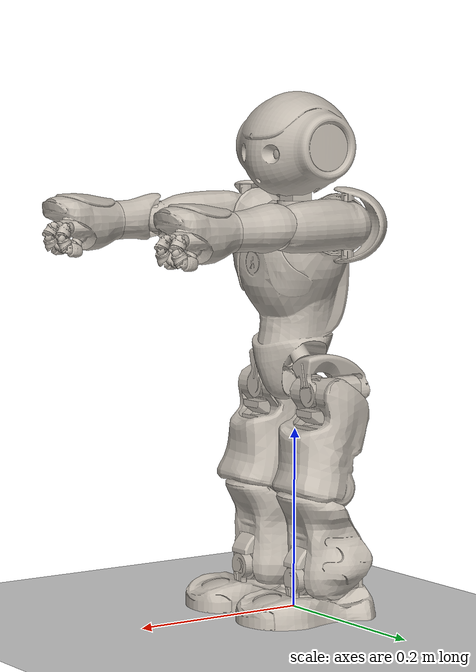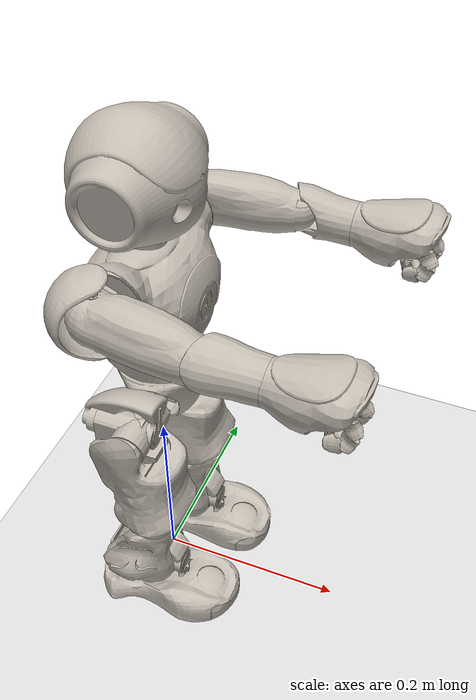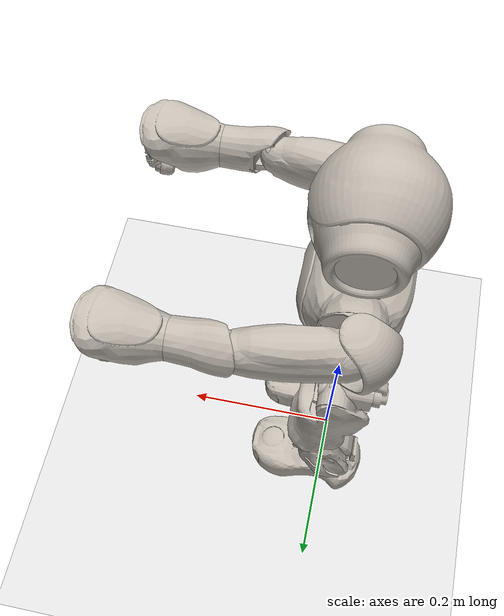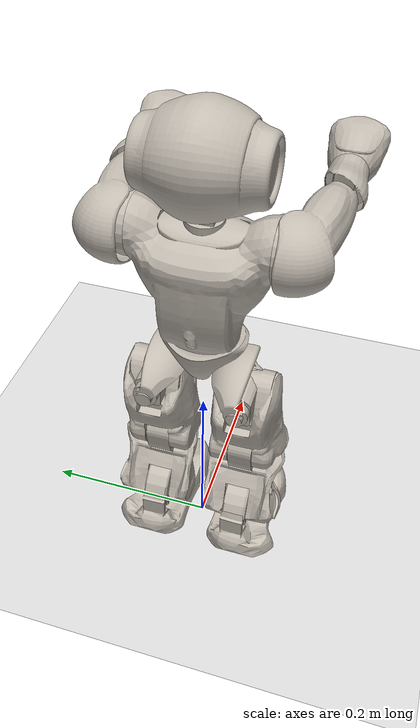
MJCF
<mujoco model="NaoH25V50">
  <compiler angle="radian" meshdir="meshes/V40_obj/"/>

  <statistic center="0 0 0.35" extent="0.9"/>
  <visual>
    <headlight diffuse="0.6 0.6 0.6" ambient="0.1 0.1 0.1" specular="0.9 0.9 0.9"/>
    <rgba haze="0.15 0.25 0.35 1"/>
    <global azimuth="-140" elevation="-20" offwidth="2080" offheight="1170"/>
  </visual>
  <default>
    <geom material="nao_body"/>
  </default>

  <asset>
    <texture type="skybox" builtin="gradient" rgb1=".95 .97 1" rgb2=".55 .68 .85" width="800" height="800"/>
    <texture type="2d" name="groundplane" builtin="checker" mark="edge" rgb1=".92 .92 .92" rgb2=".78 .78 .78" markrgb=".15 .15 .15"
      width="300" height="300"/>
    <material name="groundplane" texture="groundplane" texuniform="true" texrepeat="5 5" reflectance="0"/>
    <texture type="2d" name="nao_texture" file="texture/textureNAO_mujoco.png"/>
    <material name="nao_body" texture="nao_texture" rgba="1 1 1 1" specular="0.12" shininess="0.12"/>
    <mesh name="HeadYaw_0_10" file="HeadYaw.obj" scale="0.1 0.1 0.1"/>
    <mesh name="HeadPitch_0_10" file="HeadPitch.obj" scale="0.1 0.1 0.1"/>
    <mesh name="LHipYawPitch_0_10" file="LHipYawPitch.obj" scale="0.1 0.1 0.1"/>
    <mesh name="LHipRoll_0_10" file="LHipRoll.obj" scale="0.1 0.1 0.1"/>
    <mesh name="LHipPitch_0_10" file="LHipPitch.obj" scale="0.1 0.1 0.1"/>
    <mesh name="LKneePitch_0_10" file="LKneePitch.obj" scale="0.1 0.1 0.1"/>
    <mesh name="LAnklePitch_0_10" file="LAnklePitch.obj" scale="0.1 0.1 0.1"/>
    <mesh name="LAnkleRoll_0_10" file="LAnkleRoll.obj" scale="0.1 0.1 0.1"/>
    <mesh name="RHipYawPitch_0_10" file="RHipYawPitch.obj" scale="0.1 0.1 0.1"/>
    <mesh name="RHipRoll_0_10" file="RHipRoll.obj" scale="0.1 0.1 0.1"/>
    <mesh name="RHipPitch_0_10" file="RHipPitch.obj" scale="0.1 0.1 0.1"/>
    <mesh name="RKneePitch_0_10" file="RKneePitch.obj" scale="0.1 0.1 0.1"/>
    <mesh name="RAnklePitch_0_10" file="RAnklePitch.obj" scale="0.1 0.1 0.1"/>
    <mesh name="RAnkleRoll_0_10" file="RAnkleRoll.obj" scale="0.1 0.1 0.1"/>
    <mesh name="Torso_0_10" file="Torso.obj" scale="0.1 0.1 0.1"/>
    <mesh name="LShoulderPitch_0_10" file="LShoulderPitch.obj" scale="0.1 0.1 0.1"/>
    <mesh name="LShoulderRoll_0_10" file="LShoulderRoll.obj" scale="0.1 0.1 0.1"/>
    <mesh name="LElbowRoll_0_10" file="LElbowRoll.obj" scale="0.1 0.1 0.1"/>
    <mesh name="LWristYaw_0_10" file="LWristYaw.obj" scale="0.1 0.1 0.1"/>
    <mesh name="RShoulderPitch_0_10" file="RShoulderPitch.obj" scale="0.1 0.1 0.1"/>
    <mesh name="RShoulderRoll_0_10" file="RShoulderRoll.obj" scale="0.1 0.1 0.1"/>
    <mesh name="RElbowRoll_0_10" file="RElbowRoll.obj" scale="0.1 0.1 0.1"/>
    <mesh name="RWristYaw_0_10" file="RWristYaw.obj" scale="0.1 0.1 0.1"/>
    <mesh name="RFinger13_0_10" file="RFinger13.obj" scale="0.1 0.1 0.1"/>
    <mesh name="RFinger12_0_10" file="RFinger12.obj" scale="0.1 0.1 0.1"/>
    <mesh name="LFinger21_0_10" file="LFinger21.obj" scale="0.1 0.1 0.1"/>
    <mesh name="LFinger13_0_10" file="LFinger13.obj" scale="0.1 0.1 0.1"/>
    <mesh name="LFinger11_0_10" file="LFinger11.obj" scale="0.1 0.1 0.1"/>
    <mesh name="RFinger22_0_10" file="RFinger22.obj" scale="0.1 0.1 0.1"/>
    <mesh name="LFinger22_0_10" file="LFinger22.obj" scale="0.1 0.1 0.1"/>
    <mesh name="RFinger21_0_10" file="RFinger21.obj" scale="0.1 0.1 0.1"/>
    <mesh name="LFinger12_0_10" file="LFinger12.obj" scale="0.1 0.1 0.1"/>
    <mesh name="RFinger23_0_10" file="RFinger23.obj" scale="0.1 0.1 0.1"/>
    <mesh name="RFinger11_0_10" file="RFinger11.obj" scale="0.1 0.1 0.1"/>
    <mesh name="LFinger23_0_10" file="LFinger23.obj" scale="0.1 0.1 0.1"/>
    <mesh name="LThumb1_0_10" file="LThumb1.obj" scale="0.1 0.1 0.1"/>
    <mesh name="RThumb1_0_10" file="RThumb1.obj" scale="0.1 0.1 0.1"/>
    <mesh name="RThumb2_0_10" file="RThumb2.obj" scale="0.1 0.1 0.1"/>
    <mesh name="LThumb2_0_10" file="LThumb2.obj" scale="0.1 0.1 0.1"/>
  </asset>

  <worldbody>
    <geom name="floor" size="0 0 0.01" type="plane" material="groundplane" contype="1" conaffinity="0" priority="1"
      friction="0.6" condim="3"/>
      <light diffuse=".5 .5 .5" pos="-3 -3 5" dir="3 3 -5" castshadow="true"/>
      <body name="torso" pos="0 0 0.33">
      <inertial pos="-0.00413 0 0.04342" quat="0.9992 -0.00993848 0.0113353 0.0370387" mass="1.04956" diaginertia="0.00308544 0.00288295 0.00159112"/>
      <joint name="base_link_fixedjoint" type="free"/>
      <geom type="mesh" mesh="Torso_0_10"/>
      <body name="Neck" pos="0 0 0.1265">
        <inertial pos="-1e-05 0 -0.02742" quat="0.70765 -0.00173495 0.00151894 0.706559" mass="0.07842" diaginertia="1.70396e-05 1.60324e-05 5.53348e-06"/>
        <joint name="HeadYaw" pos="0 0 0" axis="0 0 1" range="-2.08567 2.08567" actuatorfrcrange="-1.547 1.547"/>
        <geom type="mesh" mesh="HeadYaw_0_10"/>
        <body name="Head">
          <inertial pos="-0.00112 0 0.05258" quat="0.463877 0.585354 -0.492966 0.446277" mass="0.60533" diaginertia="0.000990592 0.000957952 0.000811033"/>
          <joint name="HeadPitch" pos="0 0 0" axis="0 1 0" range="-0.671952 0.514872" actuatorfrcrange="-1.532 1.532"/>
          <geom type="mesh" mesh="HeadPitch_0_10"/>
        </body>
      </body>
      <body name="LPelvis" pos="0 0.05 -0.085">
        <inertial pos="-0.00781 -0.01114 0.02661" quat="0.232303 0.656505 0.182148 0.69416" mass="0.06981" diaginertia="5.16414e-05 4.58792e-05 2.32239e-05"/>
        <joint name="LHipYawPitch" pos="0 0 0" axis="0 0.707107 -0.707107" range="-1.14529 0.740718" actuatorfrcrange="-3.348 3.348"/>
        <geom type="mesh" mesh="LHipYawPitch_0_10"/>
        <body name="LHip">
          <inertial pos="-0.01549 0.00029 -0.00515" quat="0.453959 0.527953 0.574067 0.430853" mass="0.14053" diaginertia="6.08587e-05 5.59269e-05 2.22526e-05"/>
          <joint name="LHipRoll" pos="0 0 0" axis="1 0 0" range="-0.379435 0.79046" actuatorfrcrange="-3.348 3.348"/>
          <geom type="mesh" mesh="LHipRoll_0_10"/>
          <body name="LThigh">
            <inertial pos="0.00138 0.00221 -0.05373" quat="0.992078 -0.0228023 -0.123519 -0.00190301" mass="0.38968" diaginertia="0.000524114 0.000465732 0.000286453"/>
            <joint name="LHipPitch" pos="0 0 0" axis="0 1 0" range="-1.53589 0.48398" actuatorfrcrange="-3.023 3.023"/>
            <geom type="mesh" mesh="LHipPitch_0_10"/>
            <body name="LTibia" pos="0 0 -0.1">
              <inertial pos="0.00453 0.00225 -0.04936" quat="0.997907 0.0169027 0.0579417 0.0232071" mass="0.30142" diaginertia="0.000449928 0.000388139 0.000181704"/>
              <joint name="LKneePitch" pos="0 0 0" axis="0 1 0" range="-0.0923279 2.11255" actuatorfrcrange="-3.023 3.023"/>
              <geom type="mesh" mesh="LKneePitch_0_10"/>
              <body name="LAnklePitch" pos="0 0 -0.1029">
                <inertial pos="0.00045 0.00029 0.00685" quat="0.447256 0.548803 0.537287 0.458368" mass="0.13416" diaginertia="6.79494e-05 5.56016e-05 3.14223e-05"/>
                <joint name="LAnklePitch" pos="0 0 0" axis="0 1 0" range="-1.18944 0.922581" actuatorfrcrange="-3.023 3.023"/>
                <geom type="mesh" mesh="LAnklePitch_0_10"/>
                <body name="l_ankle">
                  <inertial pos="0.0254198 0.00330005 -0.0323906" quat="0.0134363 0.704739 -0.00974782 0.709273" mass="0.171848" diaginertia="0.000412891 0.000353334 8.70025e-05"/>
                  <joint name="LAnkleRoll" pos="0 0 0" axis="1 0 0" range="-0.397761 0.768992" actuatorfrcrange="-3.348 3.348"/>
                  <geom type="mesh" mesh="LAnkleRoll_0_10"/>
                  <geom size="0.005 0.005 0.0025" pos="0.07025 -0.0231 -0.04511" type="box"/>
                  <geom size="0.005 0.005 0.0025" pos="-0.02965 -0.0191 -0.04511" type="box"/>
                  <geom size="0.005 0.005 0.0025" pos="0.07025 0.0299 -0.04511" type="box"/>
                  <geom size="0.005 0.005 0.0025" pos="-0.03025 0.0299 -0.04511" type="box"/>
                </body>
              </body>
            </body>
          </body>
        </body>
      </body>
      <body name="RPelvis" pos="0 -0.05 -0.085">
        <inertial pos="-0.00781 0.01114 0.02661" quat="-0.286295 0.637526 -0.200888 0.686469" mass="0.06981" diaginertia="6.0003e-05 4.60859e-05 3.15895e-05"/>
        <joint name="RHipYawPitch" pos="0 0 0" axis="0 0.707107 0.707107" range="-1.14529 0.740718" actuatorfrcrange="-3.348 3.348"/>
        <geom type="mesh" mesh="RHipYawPitch_0_10"/>
        <body name="RHip">
          <inertial pos="-0.01549 -0.00029 -0.00515" quat="0.431269 0.573083 0.528698 0.453941" mass="0.14053" diaginertia="6.08554e-05 5.59208e-05 2.2268e-05"/>
          <joint name="RHipRoll" pos="0 0 0" axis="1 0 0" range="-0.79046 0.379435" actuatorfrcrange="-3.348 3.348"/>
          <geom type="mesh" mesh="RHipRoll_0_10"/>
          <body name="RThigh">
            <inertial pos="0.00138 -0.00221 -0.05373" quat="0.99203 0.0205489 -0.124311 0.000726212" mass="0.38968" diaginertia="0.000525121 0.000466802 0.000286518"/>
            <joint name="RHipPitch" pos="0 0 0" axis="0 1 0" range="-1.53589 0.48398" actuatorfrcrange="-3.0226 3.0226"/>
            <geom type="mesh" mesh="RHipPitch_0_10"/>
            <body name="RTibia" pos="0 0 -0.1">
              <inertial pos="0.00453 -0.00225 -0.04936" quat="0.99698 -0.0149083 0.0724691 -0.0235809" mass="0.30142" diaginertia="0.000452851 0.000387699 0.000177824"/>
              <joint name="RKneePitch" pos="0 0 0" axis="0 1 0" range="-0.0923279 2.11255" actuatorfrcrange="-3.0226 3.0226"/>
              <geom type="mesh" mesh="RKneePitch_0_10"/>
              <body name="RAnklePitch" pos="0 0 -0.1029">
                <inertial pos="0.00045 -0.00029 0.00685" quat="0.458219 0.537985 0.54818 0.447332" mass="0.13416" diaginertia="6.79942e-05 5.56532e-05 3.14175e-05"/>
                <joint name="RAnklePitch" pos="0 0 0" axis="0 1 0" range="-1.1863 0.932006" actuatorfrcrange="-3.0226 3.0226"/>
                <geom type="mesh" mesh="RAnklePitch_0_10"/>
                <body name="r_ankle">
                  <inertial pos="0.0254198 -0.00330005 -0.0323906" quat="-0.0138336 0.704473 0.00894574 0.70954" mass="0.171848" diaginertia="0.000412175 0.000352454 8.68701e-05"/>
                  <joint name="RAnkleRoll" pos="0 0 0" axis="1 0 0" range="-0.768992 0.397761" actuatorfrcrange="-3.348 3.348"/>
                  <geom type="mesh" mesh="RAnkleRoll_0_10"/>
                  <geom size="0.005 0.005 0.0025" pos="-0.03025 0.0191 -0.04511" type="box"/>
                  <geom size="0.005 0.005 0.0025" pos="-0.02965 -0.0299 -0.04511" type="box"/>
                  <geom size="0.005 0.005 0.0025" pos="0.07025 -0.0299 -0.04511" type="box"/>
                  <geom size="0.005 0.005 0.0025" pos="0.07025 0.0231 -0.04511" type="box"/>
                </body>
              </body>
            </body>
          </body>
        </body>
      </body>
      <body name="LShoulder" pos="0 0.098 0.1">
        <inertial pos="-0.00165 -0.02663 0.00014" quat="0.353499 0.572853 -0.442525 0.592494" mass="0.09304" diaginertia="2.02186e-05 1.91002e-05 1.30704e-05"/>
        <joint name="LShoulderPitch" pos="0 0 0" axis="0 1 0" range="-2.08567 2.08567" actuatorfrcrange="-1.329 1.329"/>
        <geom type="mesh" mesh="LShoulderPitch_0_10"/>
        <body name="LBicep">
          <inertial pos="0.02455 0.00563 0.0033" quat="0.467645 0.46185 0.492756 0.570257" mass="0.15777" diaginertia="0.00027823 0.000242894 8.25818e-05"/>
          <joint name="LShoulderRoll" pos="0 0 0" axis="0 0 1" range="-0.314159 1.32645" actuatorfrcrange="-1.7835 1.7835"/>
          <geom type="mesh" mesh="LShoulderRoll_0_10"/>
          <body name="LElbow" pos="0.105 0.015 0">
            <inertial pos="-0.02744 0 -0.00014" quat="-0.000545392 0.711779 -0.000696018 0.702403" mass="0.06483" diaginertia="2.76333e-05 2.66179e-05 5.592e-06"/>
            <joint name="LElbowYaw" pos="0 0 0" axis="1 0 0" range="-2.08567 2.08567" actuatorfrcrange="-1.547 1.547"/>
            <body name="LForeArm">
              <inertial pos="0.02556 0.00281 0.00076" quat="0.481839 0.619088 0.422287 0.454131" mass="0.07761" diaginertia="3.9183e-05 3.6083e-05 2.37632e-05"/>
              <joint name="LElbowRoll" pos="0 0 0" axis="0 0 1" range="-1.54462 0.0349066" actuatorfrcrange="-1.532 1.532"/>
              <geom type="mesh" mesh="LElbowRoll_0_10"/>
              <body name="l_wrist" pos="0.05595 0 0">
                <inertial pos="0.03434 -0.00088 0.00308" quat="0.346526 0.607704 0.329318 0.634165" mass="0.18533" diaginertia="0.000137482 0.000131631 6.85194e-05"/>
                <joint name="LWristYaw" pos="0 0 0" axis="1 0 0" range="-1.82387 1.82387" actuatorfrcrange="-0.4075 0.4075"/>
                <geom type="mesh" mesh="LWristYaw_0_10"/>
                <body name="l_gripper" pos="0.05775 0 -0.01231">
                  <inertial pos="0 0 0" mass="2e-06" diaginertia="1.1e-09 1.1e-09 1.1e-09"/>
                </body>
                <body name="LFinger21_link" pos="0.06907 -0.01157 -0.00304" quat="0.672286 0.564114 0.308141 -0.367227">
                  <inertial pos="0 0 0" mass="2e-06" diaginertia="1.1e-09 1.1e-09 1.1e-09"/>
                  <joint name="LFinger21" pos="0 0 0" axis="0 0 1" range="-1.5 1.5" actuatorfrcrange="-100 100"/>
                  <geom type="mesh" mesh="LFinger21_0_10"/>
                  <body name="LFinger22_link" pos="0.01436 0 0" quat="0.877607 0 0 -0.479381">
                    <inertial pos="0 0 0" mass="2e-06" diaginertia="1.1e-09 1.1e-09 1.1e-09"/>
                    <joint name="LFinger22" pos="0 0 0" axis="0 0 1" range="-1.5 1.5" actuatorfrcrange="-100 100"/>
                    <geom type="mesh" mesh="LFinger22_0_10"/>
                    <body name="LFinger23_link" pos="0.01436 0 0" quat="0.877607 0 0 -0.479381">
                      <inertial pos="0 0 0" mass="2e-06" diaginertia="1.1e-09 1.1e-09 1.1e-09"/>
                      <joint name="LFinger23" pos="0 0 0" axis="0 0 1" range="-1.5 1.5" actuatorfrcrange="-100 100"/>
                      <geom type="mesh" mesh="LFinger23_0_10"/>
                    </body>
                  </body>
                </body>
                <body name="LFinger11_link" pos="0.06907 0.01157 -0.00304" quat="0.564115 0.672285 0.367228 -0.30814">
                  <inertial pos="0 0 0" mass="2e-06" diaginertia="1.1e-09 1.1e-09 1.1e-09"/>
                  <joint name="LFinger11" pos="0 0 0" axis="0 0 1" range="-1.5 1.5" actuatorfrcrange="-100 100"/>
                  <geom type="mesh" mesh="LFinger11_0_10"/>
                  <body name="LFinger12_link" pos="0.01436 0 0" quat="0.877607 0 0 -0.479381">
                    <inertial pos="0 0 0" mass="2e-06" diaginertia="1.1e-09 1.1e-09 1.1e-09"/>
                    <joint name="LFinger12" pos="0 0 0" axis="0 0 1" range="-1.5 1.5" actuatorfrcrange="-100 100"/>
                    <geom type="mesh" mesh="LFinger12_0_10"/>
                    <body name="LFinger13_link" pos="0.01436 0 0" quat="0.877607 0 0 -0.479381">
                      <inertial pos="0 0 0" mass="2e-06" diaginertia="1.1e-09 1.1e-09 1.1e-09"/>
                      <joint name="LFinger13" pos="0 0 0" axis="0 0 1" range="-1.5 1.5" actuatorfrcrange="-100 100"/>
                      <geom type="mesh" mesh="LFinger13_0_10"/>
                    </body>
                  </body>
                </body>
                <body name="LThumb1_link" pos="0.04895 0 -0.02638" quat="0.706908 -0.70691 0.0167209 0.016721">
                  <inertial pos="0 0 0" mass="2e-06" diaginertia="1.1e-09 1.1e-09 1.1e-09"/>
                  <joint name="LThumb1" pos="0 0 0" axis="0 0 1" range="-1.5 1.5" actuatorfrcrange="-100 100"/>
                  <geom type="mesh" mesh="LThumb1_0_10"/>
                  <body name="LThumb2_link" pos="0.01436 0 0" quat="0.877607 0 0 -0.479381">
                    <inertial pos="0 0 0" mass="2e-06" diaginertia="1.1e-09 1.1e-09 1.1e-09"/>
                    <joint name="LThumb2" pos="0 0 0" axis="0 0 1" range="-1.5 1.5" actuatorfrcrange="-100 100"/>
                    <geom type="mesh" mesh="LThumb2_0_10"/>
                  </body>
                </body>
              </body>
            </body>
          </body>
        </body>
      </body>
      <body name="RShoulder" pos="0 -0.098 0.1">
        <inertial pos="-0.00165 0.02663 0.00014" quat="0.572853 0.353499 -0.592494 0.442525" mass="0.09304" diaginertia="2.02186e-05 1.91002e-05 1.30704e-05"/>
        <joint name="RShoulderPitch" pos="0 0 0" axis="0 1 0" range="-2.08567 2.08567" actuatorfrcrange="-1.329 1.329"/>
        <geom type="mesh" mesh="RShoulderPitch_0_10"/>
        <body name="RBicep">
          <inertial pos="0.02455 -0.00563 0.0033" quat="0.556969 0.570609 0.359404 0.484788" mass="0.15777" diaginertia="0.000287934 0.00025515 8.56154e-05"/>
          <joint name="RShoulderRoll" pos="0 0 0" axis="0 0 1" range="-1.32645 0.314159" actuatorfrcrange="-1.783 1.783"/>
          <geom type="mesh" mesh="RShoulderRoll_0_10"/>
          <body name="RElbow" pos="0.105 -0.015 0">
            <inertial pos="-0.02744 0 -0.00014" quat="-0.000545392 0.711779 -0.000696018 0.702403" mass="0.06483" diaginertia="2.76333e-05 2.66179e-05 5.592e-06"/>
            <joint name="RElbowYaw" pos="0 0 0" axis="1 0 0" range="-2.08567 2.08567" actuatorfrcrange="-1.547 1.547"/>
            <body name="RForeArm">
              <inertial pos="0.02556 -0.00281 0.00076" quat="0.453039 0.428011 0.593606 0.509111" mass="0.07761" diaginertia="3.92326e-05 3.59586e-05 2.39457e-05"/>
              <joint name="RElbowRoll" pos="0 0 0" axis="0 0 1" range="-0.0349066 1.54462" actuatorfrcrange="-1.532 1.532"/>
              <geom type="mesh" mesh="RElbowRoll_0_10"/>
              <body name="r_wrist" pos="0.05595 0 0">
                <inertial pos="0.03434 0.00088 0.00308" quat="0.422432 0.617987 0.303847 0.589339" mass="0.18533" diaginertia="0.000139307 0.000131711 6.66137e-05"/>
                <joint name="RWristYaw" pos="0 0 0" axis="1 0 0" range="-1.82387 1.82387" actuatorfrcrange="-0.4075 0.4075"/>
                <geom type="mesh" mesh="RWristYaw_0_10"/>
                <body name="r_gripper" pos="0.05775 0 -0.01213">
                  <inertial pos="0 0 0" mass="2e-06" diaginertia="1.1e-09 1.1e-09 1.1e-09"/>
                </body>
                <body name="RFinger21_link" pos="0.06907 -0.01157 -0.00304" quat="0.672286 0.564114 0.308141 -0.367227">
                  <inertial pos="0 0 0" mass="2e-06" diaginertia="1.1e-09 1.1e-09 1.1e-09"/>
                  <joint name="RFinger21" pos="0 0 0" axis="0 0 1" range="-1.5 1.5" actuatorfrcrange="-100 100"/>
                  <geom type="mesh" mesh="RFinger21_0_10"/>
                  <body name="RFinger22_link" pos="0.01436 0 0" quat="0.877607 0 0 -0.479381">
                    <inertial pos="0 0 0" mass="2e-06" diaginertia="1.1e-09 1.1e-09 1.1e-09"/>
                    <joint name="RFinger22" pos="0 0 0" axis="0 0 1" range="-1.5 1.5" actuatorfrcrange="-100 100"/>
                    <geom type="mesh" mesh="RFinger22_0_10"/>
                    <body name="RFinger23_link" pos="0.01436 0 0" quat="0.877607 0 0 -0.479381">
                      <inertial pos="0 0 0" mass="2e-06" diaginertia="1.1e-09 1.1e-09 1.1e-09"/>
                      <joint name="RFinger23" pos="0 0 0" axis="0 0 1" range="-1.5 1.5" actuatorfrcrange="-100 100"/>
                      <geom type="mesh" mesh="RFinger23_0_10"/>
                    </body>
                  </body>
                </body>
                <body name="RFinger11_link" pos="0.06907 0.01157 -0.00304" quat="0.564115 0.672285 0.367228 -0.30814">
                  <inertial pos="0 0 0" mass="2e-06" diaginertia="1.1e-09 1.1e-09 1.1e-09"/>
                  <joint name="RFinger11" pos="0 0 0" axis="0 0 1" range="-1.5 1.5" actuatorfrcrange="-100 100"/>
                  <geom type="mesh" mesh="RFinger11_0_10"/>
                  <body name="RFinger12_link" pos="0.01436 0 0" quat="0.877607 0 0 -0.479381">
                    <inertial pos="0 0 0" mass="2e-06" diaginertia="1.1e-09 1.1e-09 1.1e-09"/>
                    <joint name="RFinger12" pos="0 0 0" axis="0 0 1" range="-1.5 1.5" actuatorfrcrange="-100 100"/>
                    <geom type="mesh" mesh="RFinger12_0_10"/>
                    <body name="RFinger13_link" pos="0.01436 0 0" quat="0.877607 0 0 -0.479381">
                      <inertial pos="0 0 0" mass="2e-06" diaginertia="1.1e-09 1.1e-09 1.1e-09"/>
                      <joint name="RFinger13" pos="0 0 0" axis="0 0 1" range="-1.5 1.5" actuatorfrcrange="-100 100"/>
                      <geom type="mesh" mesh="RFinger13_0_10"/>
                    </body>
                  </body>
                </body>
                <body name="RThumb1_link" pos="0.04895 0 -0.02638" quat="0.706908 -0.70691 0.0167209 0.016721">
                  <inertial pos="0 0 0" mass="2e-06" diaginertia="1.1e-09 1.1e-09 1.1e-09"/>
                  <joint name="RThumb1" pos="0 0 0" axis="0 0 1" range="-1.5 1.5" actuatorfrcrange="-100 100"/>
                  <geom type="mesh" mesh="RThumb1_0_10"/>
                  <body name="RThumb2_link" pos="0.01436 0 0" quat="0.877607 0 0 -0.479381">
                    <inertial pos="0 0 0" mass="2e-06" diaginertia="1.1e-09 1.1e-09 1.1e-09"/>
                    <joint name="RThumb2" pos="0 0 0" axis="0 0 1" range="-1.5 1.5" actuatorfrcrange="-100 100"/>
                    <geom type="mesh" mesh="RThumb2_0_10"/>
                  </body>
                </body>
              </body>
            </body>
          </body>
        </body>
      </body>
    </body>
  </worldbody>
</mujoco>
